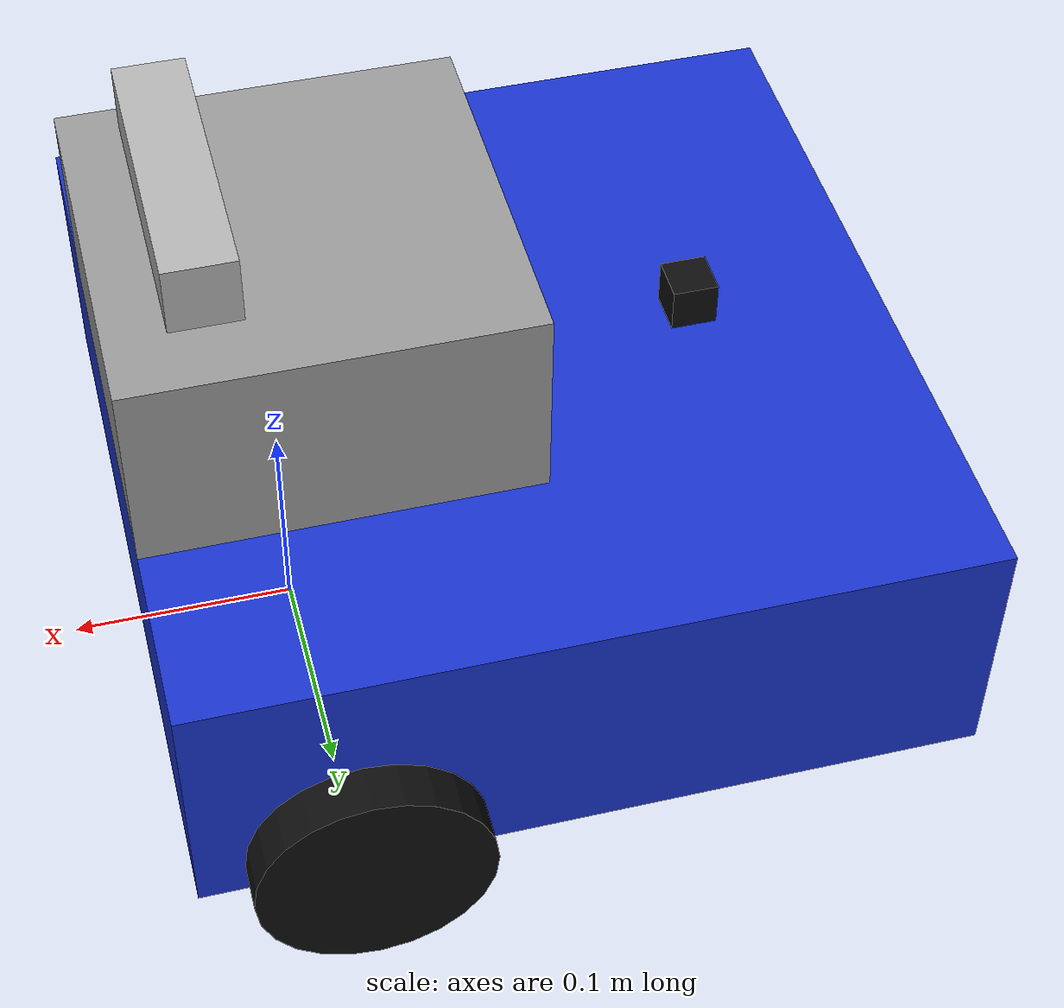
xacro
<?xml version="1.0"?>
<robot name="simple_mobile_robot" xmlns:xacro="http://www.ros.org/wiki/xacro">

  <link name="base_footprint">
    <inertial>
      <mass value="0.0001"/>
      <inertia ixx="0.0001" ixy="0.0" ixz="0.0" iyy="0.0001" iyz="0.0" izz="0.0001"/>
    </inertial>
  </link>

  <link name="base_link">
    <inertial>
      <origin xyz="-0.10 0 0.0285" rpy="0 0 0"/>
      <mass value="5.0"/>
      <inertia
        ixx="0.1" ixy="0.0" ixz="0.0"
        iyy="0.1" iyz="0.0"
        izz="0.1"/>
    </inertial>

    <visual>
      <origin xyz="-0.10 0 0.0285"/>
      <geometry>
        <box size="0.34 0.34 0.117"/>
      </geometry>
      <material name="blue">
        <color rgba="0.1 0.2 0.8 1.0"/>
      </material>
    </visual>

    <collision>
      <origin xyz="-0.10 0 0.0285"/>
      <geometry>
        <box size="0.34 0.34 0.117"/>
      </geometry>
    </collision>
  </link>

  <link name="wheel_left_link">
    <inertial>
      <origin xyz="0 0 0"/>
      <mass value="0.2"/>
      <inertia
        ixx="0.0005" ixy="0.0" ixz="0.0"
        iyy="0.0005" iyz="0.0"
        izz="0.001"/>
    </inertial>

    <visual>
      <origin xyz="0 0 0" rpy="1.5708 0 0"/>
      <geometry>
        <cylinder radius="0.05" length="0.02"/>
      </geometry>
      <material name="black">
        <color rgba="0.05 0.05 0.05 1.0"/>
      </material>
    </visual>

    <collision>
      <origin xyz="0 0 0" rpy="1.5708 0 0"/>
      <geometry>
        <cylinder radius="0.05" length="0.02"/>
      </geometry>
    </collision>
  </link>

  <link name="caster_link">
    <visual>
      <geometry>
        <sphere radius="0.02"/>
      </geometry>
      <material name="black"/>
    </visual>
    <collision>
      <geometry>
        <sphere radius="0.02"/>
      </geometry>
    </collision>
  </link>

  <link name="wheel_right_link">
    <inertial>
      <origin xyz="0 0 0"/>
      <mass value="0.2"/>
      <inertia
        ixx="0.0005" ixy="0.0" ixz="0.0"
        iyy="0.0005" iyz="0.0"
        izz="0.001"/>
    </inertial>

    <visual>
      <origin xyz="0 0 0" rpy="1.5708 0 0"/>
      <geometry>
        <cylinder radius="0.05" length="0.02"/>
      </geometry>
      <material name="black"/>
    </visual>

    <collision>
      <origin xyz="0 0 0" rpy="1.5708 0 0"/>
      <geometry>
        <cylinder radius="0.05" length="0.02"/>
      </geometry>
    </collision>
  </link>

  <link name="lidar_link">
    <inertial>
      <origin xyz="0 0 0"/>
      <mass value="0.05"/>
      <inertia
        ixx="0.0001" ixy="0.0" ixz="0.0"
        iyy="0.0001" iyz="0.0"
        izz="0.0001"/>
    </inertial>

    <visual>
      <origin xyz="0 0 0"/>
      <geometry>
        <box size="0.17 0.17 0.09"/> </geometry>
      <material name="gray">
        <color rgba="0.6 0.6 0.6 1.0"/>
      </material>
    </visual>

    <collision>
      <origin xyz="0 0 0"/>
      <geometry>
        <box size="0.17 0.17 0.09"/>
      </geometry>
    </collision>
  </link>

  <link name="imu_link">
    <visual>
      <geometry>
        <box size="0.02 0.02 0.02"/>
      </geometry>
      <material name="black"/>
    </visual>
  </link>

  <link name="camera_link">
    <visual>
      <origin xyz="0 0 0" rpy="0 0 0"/>
      <geometry>
        <box size="0.03 0.125 0.03"/>
      </geometry>
      <material name="silver">
        <color rgba="0.7 0.7 0.7 1.0"/>
      </material>
    </visual>

    <collision>
      <origin xyz="0 0 0" rpy="0 0 0"/>
      <geometry>
        <box size="0.03 0.125 0.03"/>
      </geometry>
    </collision>

    <inertial>
      <mass value="0.072"/>
      <inertia ixx="0.0001" ixy="0" ixz="0" iyy="0.0001" iyz="0" izz="0.0001"/>
    </inertial>
  </link>

  <joint name="base_link_joint" type="fixed">
    <parent link="base_footprint"/>
    <child link="base_link"/>
    <origin xyz="0 0 0.05" rpy="0 0 0"/>
  </joint>

  <joint name="caster_joint" type="fixed">
    <parent link="base_link"/>
    <child link="caster_link"/>
    <origin xyz="-0.25 0 -0.03" rpy="0 0 0"/>
  </joint>

  <joint name="left_wheel_joint" type="continuous">
    <parent link="base_link"/>
    <child link="wheel_left_link"/>
    <origin xyz="0 0.19 0" rpy="0 0 0"/>
    <axis xyz="0 1 0"/>
  </joint>

  <joint name="right_wheel_joint" type="continuous">
    <parent link="base_link"/>
    <child link="wheel_right_link"/>
    <origin xyz="0 -0.19 0" rpy="0 0 0"/>
    <axis xyz="0 1 0"/>
  </joint>

  <joint name="lidar_joint" type="fixed">
    <parent link="base_link"/>
    <child link="lidar_link"/>
    <origin xyz="-0.015 0 0.132" rpy="0 0 0"/>
  </joint>

  <joint name="imu_joint" type="fixed">
    <parent link="base_link"/>
    <child link="imu_link"/>
    <origin xyz="-0.185 0 0.097" rpy="0 0 0"/>
  </joint>

  <joint name="camera_joint" type="fixed">
    <parent link="base_link"/>
    <child link="camera_link"/>
    <origin xyz="0.03 0.0 0.2" rpy="0 0 0"/>
  </joint>

  <gazebo>
    <plugin
      filename="gz-sim-diff-drive-system"
      name="gz::sim::systems::DiffDrive">

      <left_joint>left_wheel_joint</left_joint>
      <right_joint>right_wheel_joint</right_joint>

      <wheel_separation>0.38</wheel_separation>
      <wheel_radius>0.05</wheel_radius>

      <topic>/cmd_vel</topic>

      <odom_topic>/odom</odom_topic>
      <frame_id>odom</frame_id>
      <child_frame_id>base_footprint</child_frame_id>

      <publish_odom>true</publish_odom>
      <publish_tf>true</publish_tf>

    </plugin>
  </gazebo>

  <gazebo reference="lidar_link">
      <sensor name="lidar_sensor" type="gpu_lidar"> <pose>0 0 0 0 0 0</pose>
        <gz_frame_id>lidar_link</gz_frame_id>
        <topic>lidar</topic> <update_rate>30</update_rate>
        <ray>
          <scan>
            <horizontal>
              <samples>360</samples>
              <resolution>1</resolution>
              <min_angle>-3.1415</min_angle>
              <max_angle>3.1415</max_angle>
            </horizontal>
          </scan>
          <range>
            <min>0.1</min>
            <max>10.0</max>
            <resolution>0.01</resolution>
          </range>
        </ray>
        <always_on>1</always_on>
        <visualize>true</visualize>
      </sensor>
    </gazebo>

  <gazebo reference="camera_link">
    <sensor name="depth_camera" type="rgbd_camera">
      <pose>0 0 0 0 0 0</pose>
      <update_rate>30</update_rate>
      <topic>camera</topic>
      <gz_frame_id>camera_link</gz_frame_id>
      <camera>
        <horizontal_fov>1.518</horizontal_fov>
        <image>
          <width>640</width>
          <height>480</height>
          <format>RGB_INT8</format>
        </image>
        <clip>
          <near>0.1</near>
          <far>10.0</far>
        </clip>
      </camera>
      <always_on>1</always_on>
      <visualize>true</visualize>
    </sensor>
  </gazebo>

  <gazebo>
      <plugin
        filename="gz-sim-sensors-system"
        name="gz::sim::systems::Sensors">
        <render_engine>ogre2</render_engine>
      </plugin>
  </gazebo>

  <gazebo reference="imu_link">
    <sensor name="imu_sensor" type="imu">
      <always_on>1</always_on>
      <update_rate>50</update_rate>
      <visualize>true</visualize>
      <topic>imu</topic>
    </sensor>
  </gazebo>

  <gazebo>
    <plugin filename="gz-sim-imu-system" name="gz::sim::systems::Imu"/>
  </gazebo>

  <gazebo reference="wheel_left_link">
    <mu1>1,0</mu1>
    <mu2>1.0</mu2>
  </gazebo>

  <gazebo reference="wheel_right_link">
    <mu1>1.0</mu1>
    <mu2>1.0</mu2>
  </gazebo>

  <gazebo reference="caster_link">
    <mu1>0.0</mu1>
    <mu2>0.0</mu2>
  </gazebo>

</robot>
